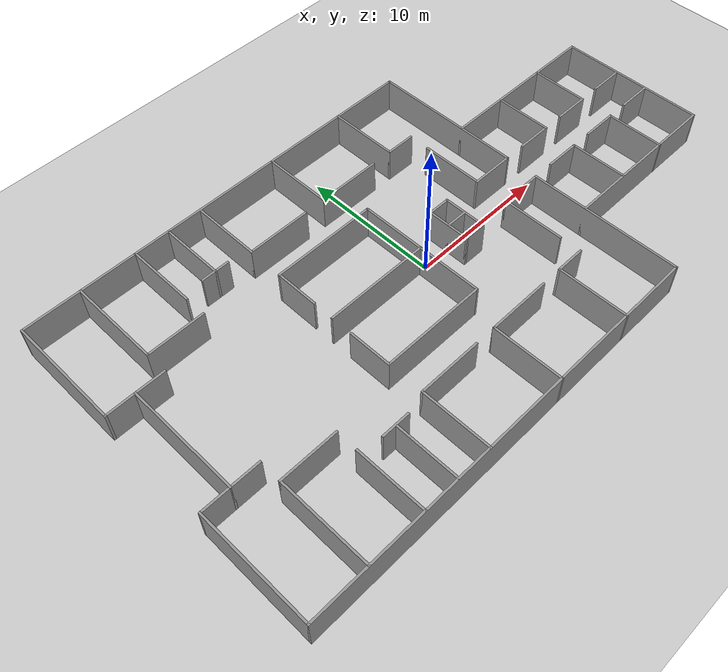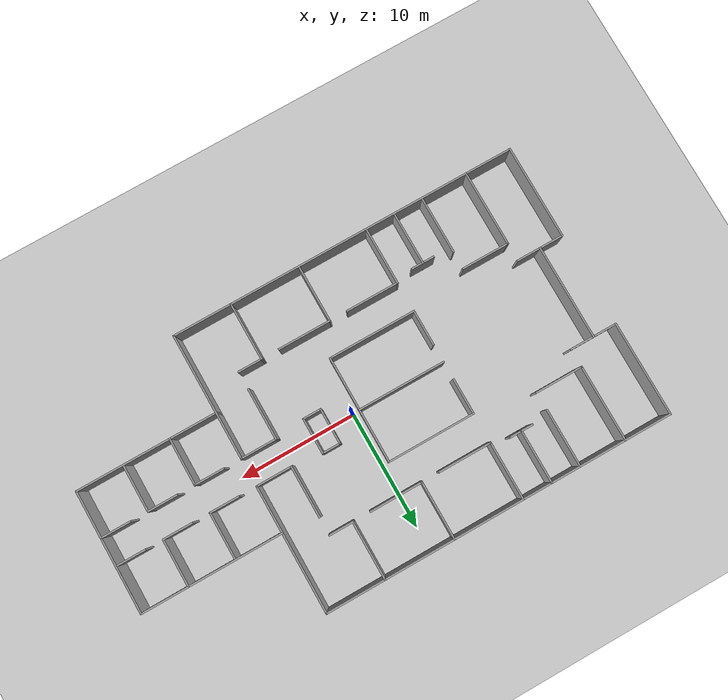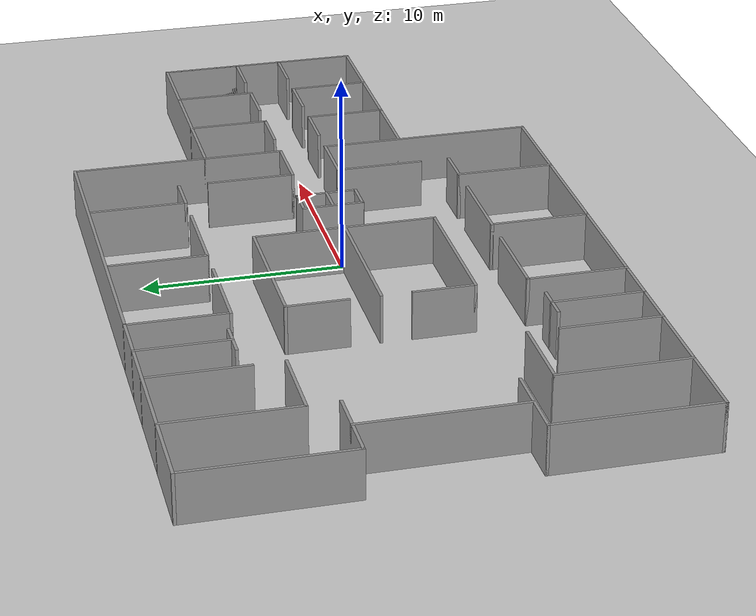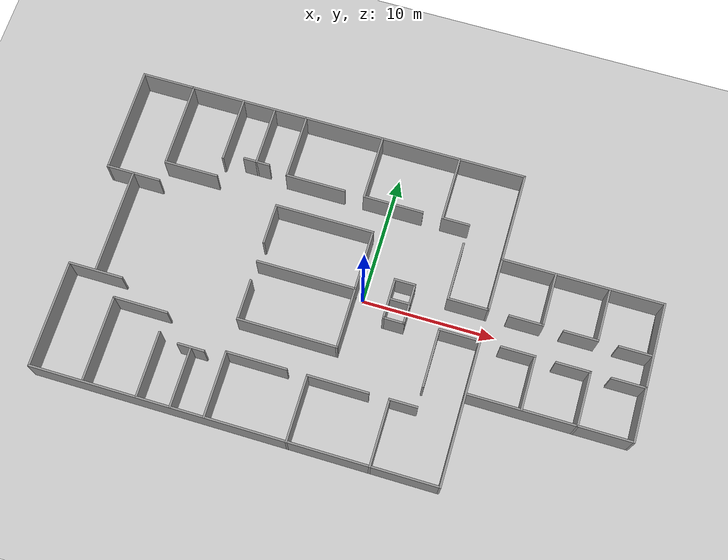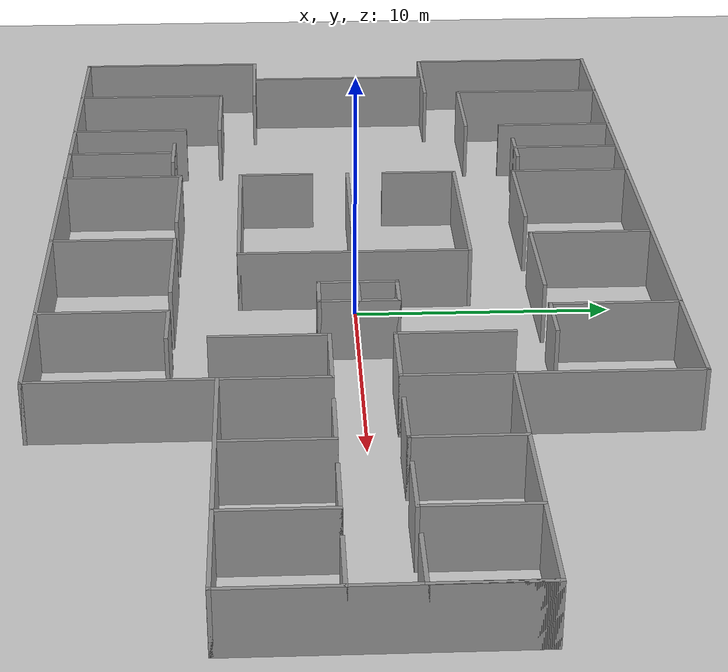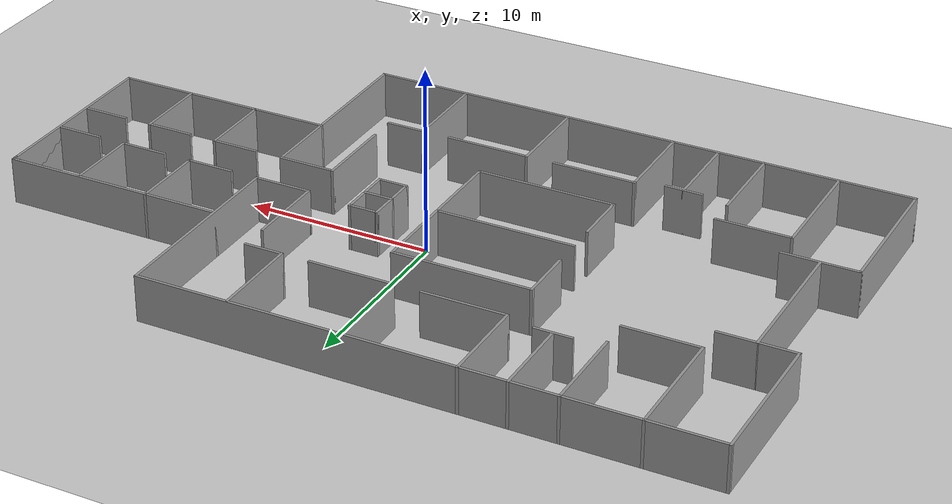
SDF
<sdf version="1.6">
 <world name="default">
  <model name="ground_plane">
   <static>1</static>
   <link name="link">
    <collision name="collision">
     <geometry><plane><normal>0 0 1</normal><size>100 100</size></plane></geometry>
     <surface>
      <contact><collide_bitmask>65535</collide_bitmask></contact>
      <friction><ode><mu>100</mu><mu2>50</mu2></ode></friction>
     </surface>
    </collision>
    <visual name="visual">
     <cast_shadows>0</cast_shadows>
     <geometry><plane><normal>0 0 1</normal><size>100 100</size></plane></geometry>
     <material>
      <script><uri>file://media/materials/scripts/gazebo.material</uri><name>Gazebo/Grey</name></script>
     </material>
    </visual>
   </link>
  </model>
  <model name="hospital_04">
   <pose>0 0 0 0 0 -1.57</pose>
   <link name="Wall_1">
    <collision name="Wall_1_Collision">
     <geometry><box><size>8.15 0.15 2.5</size></box></geometry>
     <pose>0 0 1.25 0 -0 0</pose>
    </collision>
    <visual name="Wall_1_Visual">
     <pose>0 0 1.25 0 -0 0</pose>
     <geometry><box><size>8.15 0.15 2.5</size></box></geometry>
     <material>
      <script><uri>file://media/materials/scripts/gazebo.material</uri><name>Gazebo/Grey</name></script>
      <ambient>1 1 1 1</ambient>
     </material>
     <meta><layer>0</layer></meta>
    </visual>
    <pose>0 -19 0 0 -0 0</pose>
   </link>
   <link name="Wall_100">
    <collision name="Wall_100_Collision">
     <geometry><box><size>3.15 0.15 2.5</size></box></geometry>
     <pose>0 0 1.25 0 -0 0</pose>
    </collision>
    <visual name="Wall_100_Visual">
     <pose>0 0 1.25 0 -0 0</pose>
     <geometry><box><size>3.15 0.15 2.5</size></box></geometry>
     <material>
      <script><uri>file://media/materials/scripts/gazebo.material</uri><name>Gazebo/Grey</name></script>
      <ambient>1 1 1 1</ambient>
     </material>
     <meta><layer>0</layer></meta>
    </visual>
    <pose>-3.05 -8 0 0 -0 3.14159</pose>
   </link>
   <link name="Wall_102">
    <collision name="Wall_102_Collision">
     <geometry><box><size>7.55 0.15 2.5</size></box></geometry>
     <pose>0 0 1.25 0 -0 0</pose>
    </collision>
    <visual name="Wall_102_Visual">
     <pose>0 0 1.25 0 -0 0</pose>
     <geometry><box><size>7.55 0.15 2.5</size></box></geometry>
     <material>
      <script><uri>file://media/materials/scripts/gazebo.material</uri><name>Gazebo/Grey</name></script>
      <ambient>1 1 1 1</ambient>
     </material>
     <meta><layer>0</layer></meta>
    </visual>
    <pose>0 -4.3 0 0 -0 -1.5708</pose>
   </link>
   <link name="Wall_104">
    <collision name="Wall_104_Collision">
     <geometry><box><size>3.15 0.15 2.5</size></box></geometry>
     <pose>0 0 1.25 0 -0 0</pose>
    </collision>
    <visual name="Wall_104_Visual">
     <pose>0 0 1.25 0 -0 0</pose>
     <geometry><box><size>3.15 0.15 2.5</size></box></geometry>
     <material>
      <script><uri>file://media/materials/scripts/gazebo.material</uri><name>Gazebo/Grey</name></script>
      <ambient>1 1 1 1</ambient>
     </material>
     <meta><layer>0</layer></meta>
    </visual>
    <pose>3.05 -8 0 0 -0 3.14159</pose>
   </link>
   <link name="Wall_106">
    <collision name="Wall_106_Collision">
     <geometry><box><size>3.15 0.15 2.5</size></box></geometry>
     <pose>0 0 1.25 0 -0 0</pose>
    </collision>
    <visual name="Wall_106_Visual">
     <pose>0 0 1.25 0 -0 0</pose>
     <geometry><box><size>3.15 0.15 2.5</size></box></geometry>
     <material>
      <script><uri>file://media/materials/scripts/gazebo.material</uri><name>Gazebo/Grey</name></script>
      <ambient>1 1 1 1</ambient>
     </material>
     <meta><layer>0</layer></meta>
    </visual>
    <pose>0 3.45 0 0 -0 0</pose>
   </link>
   <link name="Wall_108">
    <collision name="Wall_108_Collision">
     <geometry><box><size>1.65 0.15 2.5</size></box></geometry>
     <pose>0 0 1.25 0 -0 0</pose>
    </collision>
    <visual name="Wall_108_Visual">
     <pose>0 0 1.25 0 -0 0</pose>
     <geometry><box><size>1.65 0.15 2.5</size></box></geometry>
     <material>
      <script><uri>file://media/materials/scripts/gazebo.material</uri><name>Gazebo/Grey</name></script>
      <ambient>1 1 1 1</ambient>
     </material>
     <meta><layer>0</layer></meta>
    </visual>
    <pose>-1.5 2.7 0 0 -0 -1.5708</pose>
   </link>
   <link name="Wall_11">
    <collision name="Wall_11_Collision">
     <geometry><box><size>4.15 0.15 2.5</size></box></geometry>
     <pose>0 0 1.25 0 -0 0</pose>
    </collision>
    <visual name="Wall_11_Visual">
     <pose>0 0 1.25 0 -0 0</pose>
     <geometry><box><size>4.15 0.15 2.5</size></box></geometry>
     <material>
      <script><uri>file://media/materials/scripts/gazebo.material</uri><name>Gazebo/Grey</name></script>
      <ambient>1 1 1 1</ambient>
     </material>
     <meta><layer>0</layer></meta>
    </visual>
    <pose>-5.55 -15 0 0 -0 1.5708</pose>
   </link>
   <link name="Wall_110">
    <collision name="Wall_110_Collision">
     <geometry><box><size>1.65 0.15 2.5</size></box></geometry>
     <pose>0 0 1.25 0 -0 0</pose>
    </collision>
    <visual name="Wall_110_Visual">
     <pose>0 0 1.25 0 -0 0</pose>
     <geometry><box><size>1.65 0.15 2.5</size></box></geometry>
     <material>
      <script><uri>file://media/materials/scripts/gazebo.material</uri><name>Gazebo/Grey</name></script>
      <ambient>1 1 1 1</ambient>
     </material>
     <meta><layer>0</layer></meta>
    </visual>
    <pose>1.5 2.7 0 0 -0 -1.5708</pose>
   </link>
   <link name="Wall_112">
    <collision name="Wall_112_Collision">
     <geometry><box><size>3.15 0.15 2.5</size></box></geometry>
     <pose>0 0 1.25 0 -0 0</pose>
    </collision>
    <visual name="Wall_112_Visual">
     <pose>0 0 1.25 0 -0 0</pose>
     <geometry><box><size>3.15 0.15 2.5</size></box></geometry>
     <material>
      <script><uri>file://media/materials/scripts/gazebo.material</uri><name>Gazebo/Grey</name></script>
      <ambient>1 1 1 1</ambient>
     </material>
     <meta><layer>0</layer></meta>
    </visual>
    <pose>0 1.95 0 0 -0 0</pose>
   </link>
   <link name="Wall_114">
    <collision name="Wall_114_Collision">
     <geometry><box><size>1.65 0.15 2.5</size></box></geometry>
     <pose>0 0 1.25 0 -0 0</pose>
    </collision>
    <visual name="Wall_114_Visual">
     <pose>0 0 1.25 0 -0 0</pose>
     <geometry><box><size>1.65 0.15 2.5</size></box></geometry>
     <material>
      <script><uri>file://media/materials/scripts/gazebo.material</uri><name>Gazebo/Grey</name></script>
      <ambient>1 1 1 1</ambient>
     </material>
     <meta><layer>0</layer></meta>
    </visual>
    <pose>0 2.7 0 0 -0 -1.5708</pose>
   </link>
   <link name="Wall_122">
    <collision name="Wall_122_Collision">
     <geometry><box><size>4.15 0.15 2.5</size></box></geometry>
     <pose>0 0 1.25 0 -0 0</pose>
    </collision>
    <visual name="Wall_122_Visual">
     <pose>0 0 1.25 0 -0 0</pose>
     <geometry><box><size>4.15 0.15 2.5</size></box></geometry>
     <material>
      <script><uri>file://media/materials/scripts/gazebo.material</uri><name>Gazebo/Grey</name></script>
      <ambient>1 1 1 1</ambient>
     </material>
     <meta><layer>0</layer></meta>
    </visual>
    <pose>-3.2 13 0 0 -0 0</pose>
   </link>
   <link name="Wall_124">
    <collision name="Wall_124_Collision">
     <geometry><box><size>2.6 0.15 2.5</size></box></geometry>
     <pose>0 0 1.25 0 -0 0</pose>
    </collision>
    <visual name="Wall_124_Visual">
     <pose>0 0 1.25 0 -0 0</pose>
     <geometry><box><size>2.6 0.15 2.5</size></box></geometry>
     <material>
      <script><uri>file://media/materials/scripts/gazebo.material</uri><name>Gazebo/Grey</name></script>
      <ambient>1 1 1 1</ambient>
     </material>
     <meta><layer>0</layer></meta>
    </visual>
    <pose>-1.2 11.775 0 0 -0 -1.5708</pose>
   </link>
   <link name="Wall_126">
    <collision name="Wall_126_Collision">
     <geometry><box><size>4.15 0.15 2.5</size></box></geometry>
     <pose>0 0 1.25 0 -0 0</pose>
    </collision>
    <visual name="Wall_126_Visual">
     <pose>0 0 1.25 0 -0 0</pose>
     <geometry><box><size>4.15 0.15 2.5</size></box></geometry>
     <material>
      <script><uri>file://media/materials/scripts/gazebo.material</uri><name>Gazebo/Grey</name></script>
      <ambient>1 1 1 1</ambient>
     </material>
     <meta><layer>0</layer></meta>
    </visual>
    <pose>-3.2 17 0 0 -0 3.14159</pose>
   </link>
   <link name="Wall_128">
    <collision name="Wall_128_Collision">
     <geometry><box><size>2.6 0.15 2.5</size></box></geometry>
     <pose>0 0 1.25 0 -0 0</pose>
    </collision>
    <visual name="Wall_128_Visual">
     <pose>0 0 1.25 0 -0 0</pose>
     <geometry><box><size>2.6 0.15 2.5</size></box></geometry>
     <material>
      <script><uri>file://media/materials/scripts/gazebo.material</uri><name>Gazebo/Grey</name></script>
      <ambient>1 1 1 1</ambient>
     </material>
     <meta><layer>0</layer></meta>
    </visual>
    <pose>-1.2 15.775 0 0 -0 -1.5708</pose>
   </link>
   <link name="Wall_13">
    <collision name="Wall_13_Collision">
     <geometry><box><size>5.05 0.15 2.5</size></box></geometry>
     <pose>0 0 1.25 0 -0 0</pose>
    </collision>
    <visual name="Wall_13_Visual">
     <pose>0 0 1.25 0 -0 0</pose>
     <geometry><box><size>5.05 0.15 2.5</size></box></geometry>
     <material>
      <script><uri>file://media/materials/scripts/gazebo.material</uri><name>Gazebo/Grey</name></script>
      <ambient>1 1 1 1</ambient>
     </material>
     <meta><layer>0</layer></meta>
    </visual>
    <pose>-9.55 -13 0 0 -0 3.14159</pose>
   </link>
   <link name="Wall_130">
    <collision name="Wall_130_Collision">
     <geometry><box><size>2.6 0.15 2.5</size></box></geometry>
     <pose>0 0 1.25 0 -0 0</pose>
    </collision>
    <visual name="Wall_130_Visual">
     <pose>0 0 1.25 0 -0 0</pose>
     <geometry><box><size>2.6 0.15 2.5</size></box></geometry>
     <material>
      <script><uri>file://media/materials/scripts/gazebo.material</uri><name>Gazebo/Grey</name></script>
      <ambient>1 1 1 1</ambient>
     </material>
     <meta><layer>0</layer></meta>
    </visual>
    <pose>-1.2 19.775 0 0 -0 -1.5708</pose>
   </link>
   <link name="Wall_132">
    <collision name="Wall_132_Collision">
     <geometry><box><size>4.15 0.15 2.5</size></box></geometry>
     <pose>0 0 1.25 0 -0 0</pose>
    </collision>
    <visual name="Wall_132_Visual">
     <pose>0 0 1.25 0 -0 0</pose>
     <geometry><box><size>4.15 0.15 2.5</size></box></geometry>
     <material>
      <script><uri>file://media/materials/scripts/gazebo.material</uri><name>Gazebo/Grey</name></script>
      <ambient>1 1 1 1</ambient>
     </material>
     <meta><layer>0</layer></meta>
    </visual>
    <pose>-3.2 21 0 0 -0 0</pose>
   </link>
   <link name="Wall_134">
    <collision name="Wall_134_Collision">
     <geometry><box><size>12.15 0.15 2.5</size></box></geometry>
     <pose>0 0 1.25 0 -0 0</pose>
    </collision>
    <visual name="Wall_134_Visual">
     <pose>0 0 1.25 0 -0 0</pose>
     <geometry><box><size>12.15 0.15 2.5</size></box></geometry>
     <material>
      <script><uri>file://media/materials/scripts/gazebo.material</uri><name>Gazebo/Grey</name></script>
      <ambient>1 1 1 1</ambient>
     </material>
     <meta><layer>0</layer></meta>
    </visual>
    <pose>-5.2 15 0 0 -0 1.5708</pose>
   </link>
   <link name="Wall_136">
    <collision name="Wall_136_Collision">
     <geometry><box><size>4.15 0.15 2.5</size></box></geometry>
     <pose>0 0 1.25 0 -0 0</pose>
    </collision>
    <visual name="Wall_136_Visual">
     <pose>0 0 1.25 0 -0 0</pose>
     <geometry><box><size>4.15 0.15 2.5</size></box></geometry>
     <material>
      <script><uri>file://media/materials/scripts/gazebo.material</uri><name>Gazebo/Grey</name></script>
      <ambient>1 1 1 1</ambient>
     </material>
     <meta><layer>0</layer></meta>
    </visual>
    <pose>3.2 13 0 0 -0 0</pose>
   </link>
   <link name="Wall_138">
    <collision name="Wall_138_Collision">
     <geometry><box><size>4.15 0.15 2.5</size></box></geometry>
     <pose>0 0 1.25 0 -0 0</pose>
    </collision>
    <visual name="Wall_138_Visual">
     <pose>0 0 1.25 0 -0 0</pose>
     <geometry><box><size>4.15 0.15 2.5</size></box></geometry>
     <material>
      <script><uri>file://media/materials/scripts/gazebo.material</uri><name>Gazebo/Grey</name></script>
      <ambient>1 1 1 1</ambient>
     </material>
     <meta><layer>0</layer></meta>
    </visual>
    <pose>3.2 17 0 0 -0 0</pose>
   </link>
   <link name="Wall_140">
    <collision name="Wall_140_Collision">
     <geometry><box><size>10.55 0.15 2.5</size></box></geometry>
     <pose>0 0 1.25 0 -0 0</pose>
    </collision>
    <visual name="Wall_140_Visual">
     <pose>0 0 1.25 0 -0 0</pose>
     <geometry><box><size>10.55 0.15 2.5</size></box></geometry>
     <material>
      <script><uri>file://media/materials/scripts/gazebo.material</uri><name>Gazebo/Grey</name></script>
      <ambient>1 1 1 1</ambient>
     </material>
     <meta><layer>0</layer></meta>
    </visual>
    <pose>0 21 0 0 -0 0</pose>
   </link>
   <link name="Wall_142">
    <collision name="Wall_142_Collision">
     <geometry><box><size>12.15 0.15 2.5</size></box></geometry>
     <pose>0 0 1.25 0 -0 0</pose>
    </collision>
    <visual name="Wall_142_Visual">
     <pose>0 0 1.25 0 -0 0</pose>
     <geometry><box><size>12.15 0.15 2.5</size></box></geometry>
     <material>
      <script><uri>file://media/materials/scripts/gazebo.material</uri><name>Gazebo/Grey</name></script>
      <ambient>1 1 1 1</ambient>
     </material>
     <meta><layer>0</layer></meta>
    </visual>
    <pose>5.2 15 0 0 -0 1.5708</pose>
   </link>
   <link name="Wall_144">
    <collision name="Wall_144_Collision">
     <geometry><box><size>2.6 0.15 2.5</size></box></geometry>
     <pose>0 0 1.25 0 -0 0</pose>
    </collision>
    <visual name="Wall_144_Visual">
     <pose>0 0 1.25 0 -0 0</pose>
     <geometry><box><size>2.6 0.15 2.5</size></box></geometry>
     <material>
      <script><uri>file://media/materials/scripts/gazebo.material</uri><name>Gazebo/Grey</name></script>
      <ambient>1 1 1 1</ambient>
     </material>
     <meta><layer>0</layer></meta>
    </visual>
    <pose>1.2 19.775 0 0 -0 -1.5708</pose>
   </link>
   <link name="Wall_146">
    <collision name="Wall_146_Collision">
     <geometry><box><size>2.6 0.15 2.5</size></box></geometry>
     <pose>0 0 1.25 0 -0 0</pose>
    </collision>
    <visual name="Wall_146_Visual">
     <pose>0 0 1.25 0 -0 0</pose>
     <geometry><box><size>2.6 0.15 2.5</size></box></geometry>
     <material>
      <script><uri>file://media/materials/scripts/gazebo.material</uri><name>Gazebo/Grey</name></script>
      <ambient>1 1 1 1</ambient>
     </material>
     <meta><layer>0</layer></meta>
    </visual>
    <pose>1.2 15.775 0 0 -0 -1.5708</pose>
   </link>
   <link name="Wall_148">
    <collision name="Wall_148_Collision">
     <geometry><box><size>2.6 0.15 2.5</size></box></geometry>
     <pose>0 0 1.25 0 -0 0</pose>
    </collision>
    <visual name="Wall_148_Visual">
     <pose>0 0 1.25 0 -0 0</pose>
     <geometry><box><size>2.6 0.15 2.5</size></box></geometry>
     <material>
      <script><uri>file://media/materials/scripts/gazebo.material</uri><name>Gazebo/Grey</name></script>
      <ambient>1 1 1 1</ambient>
     </material>
     <meta><layer>0</layer></meta>
    </visual>
    <pose>1.2 11.775 0 0 -0 -1.5708</pose>
   </link>
   <link name="Wall_17">
    <collision name="Wall_17_Collision">
     <geometry><box><size>2.05 0.15 2.5</size></box></geometry>
     <pose>0 0 1.25 0 -0 0</pose>
    </collision>
    <visual name="Wall_17_Visual">
     <pose>0 0 1.25 0 -0 0</pose>
     <geometry><box><size>2.05 0.15 2.5</size></box></geometry>
     <material>
      <script><uri>file://media/materials/scripts/gazebo.material</uri><name>Gazebo/Grey</name></script>
      <ambient>1 1 1 1</ambient>
     </material>
     <meta><layer>0</layer></meta>
    </visual>
    <pose>-7.5 -10.5 0 0 -0 1.5708</pose>
   </link>
   <link name="Wall_21">
    <collision name="Wall_21_Collision">
     <geometry><box><size>4.65 0.15 2.5</size></box></geometry>
     <pose>0 0 1.25 0 -0 0</pose>
    </collision>
    <visual name="Wall_21_Visual">
     <pose>0 0 1.25 0 -0 0</pose>
     <geometry><box><size>4.65 0.15 2.5</size></box></geometry>
     <material>
      <script><uri>file://media/materials/scripts/gazebo.material</uri><name>Gazebo/Grey</name></script>
      <ambient>1 1 1 1</ambient>
     </material>
     <meta><layer>0</layer></meta>
    </visual>
    <pose>-9.75 -10.5 0 0 -0 0</pose>
   </link>
   <link name="Wall_23">
    <collision name="Wall_23_Collision">
     <geometry><box><size>5.05 0.15 2.5</size></box></geometry>
     <pose>0 0 1.25 0 -0 0</pose>
    </collision>
    <visual name="Wall_23_Visual">
     <pose>0 0 1.25 0 -0 0</pose>
     <geometry><box><size>5.05 0.15 2.5</size></box></geometry>
     <material>
      <script><uri>file://media/materials/scripts/gazebo.material</uri><name>Gazebo/Grey</name></script>
      <ambient>1 1 1 1</ambient>
     </material>
     <meta><layer>0</layer></meta>
    </visual>
    <pose>-9.55 -8 0 0 -0 0</pose>
   </link>
   <link name="Wall_27">
    <collision name="Wall_27_Collision">
     <geometry><box><size>4.6 0.15 2.5</size></box></geometry>
     <pose>0 0 1.25 0 -0 0</pose>
    </collision>
    <visual name="Wall_27_Visual">
     <pose>0 0 1.25 0 -0 0</pose>
     <geometry><box><size>4.6 0.15 2.5</size></box></geometry>
     <material>
      <script><uri>file://media/materials/scripts/gazebo.material</uri><name>Gazebo/Grey</name></script>
      <ambient>1 1 1 1</ambient>
     </material>
     <meta><layer>0</layer></meta>
    </visual>
    <pose>-7.1 -5.775 0 0 -0 1.5708</pose>
   </link>
   <link name="Wall_29">
    <collision name="Wall_29_Collision">
     <geometry><box><size>5.05 0.15 2.5</size></box></geometry>
     <pose>0 0 1.25 0 -0 0</pose>
    </collision>
    <visual name="Wall_29_Visual">
     <pose>0 0 1.25 0 -0 0</pose>
     <geometry><box><size>5.05 0.15 2.5</size></box></geometry>
     <material>
      <script><uri>file://media/materials/scripts/gazebo.material</uri><name>Gazebo/Grey</name></script>
      <ambient>1 1 1 1</ambient>
     </material>
     <meta><layer>0</layer></meta>
    </visual>
    <pose>-9.55 -2 0 0 -0 0</pose>
   </link>
   <link name="Wall_3">
    <collision name="Wall_3_Collision">
     <geometry><box><size>4.15 0.15 2.5</size></box></geometry>
     <pose>0 0 1.25 0 -0 0</pose>
    </collision>
    <visual name="Wall_3_Visual">
     <pose>0 0 1.25 0 -0 0</pose>
     <geometry><box><size>4.15 0.15 2.5</size></box></geometry>
     <material>
      <script><uri>file://media/materials/scripts/gazebo.material</uri><name>Gazebo/Grey</name></script>
      <ambient>1 1 1 1</ambient>
     </material>
     <meta><layer>0</layer></meta>
    </visual>
    <pose>-4 -19 0 0 -0 -1.5708</pose>
   </link>
   <link name="Wall_31">
    <collision name="Wall_31_Collision">
     <geometry><box><size>4.6 0.15 2.5</size></box></geometry>
     <pose>0 0 1.25 0 -0 0</pose>
    </collision>
    <visual name="Wall_31_Visual">
     <pose>0 0 1.25 0 -0 0</pose>
     <geometry><box><size>4.6 0.15 2.5</size></box></geometry>
     <material>
      <script><uri>file://media/materials/scripts/gazebo.material</uri><name>Gazebo/Grey</name></script>
      <ambient>1 1 1 1</ambient>
     </material>
     <meta><layer>0</layer></meta>
    </visual>
    <pose>-7.1 0.225001 0 0 -0 1.5708</pose>
   </link>
   <link name="Wall_33">
    <collision name="Wall_33_Collision">
     <geometry><box><size>5.05 0.15 2.5</size></box></geometry>
     <pose>0 0 1.25 0 -0 0</pose>
    </collision>
    <visual name="Wall_33_Visual">
     <pose>0 0 1.25 0 -0 0</pose>
     <geometry><box><size>5.05 0.15 2.5</size></box></geometry>
     <material>
      <script><uri>file://media/materials/scripts/gazebo.material</uri><name>Gazebo/Grey</name></script>
      <ambient>1 1 1 1</ambient>
     </material>
     <meta><layer>0</layer></meta>
    </visual>
    <pose>-9.55 4 0 0 -0 0</pose>
   </link>
   <link name="Wall_37">
    <collision name="Wall_37_Collision">
     <geometry><box><size>2.15 0.15 2.5</size></box></geometry>
     <pose>0 0 1.25 0 -0 0</pose>
    </collision>
    <visual name="Wall_37_Visual">
     <pose>0 0 1.25 0 -0 0</pose>
     <geometry><box><size>2.15 0.15 2.5</size></box></geometry>
     <material>
      <script><uri>file://media/materials/scripts/gazebo.material</uri><name>Gazebo/Grey</name></script>
      <ambient>1 1 1 1</ambient>
     </material>
     <meta><layer>0</layer></meta>
    </visual>
    <pose>-7.1 5 0 0 -0 1.5708</pose>
   </link>
   <link name="Wall_43">
    <collision name="Wall_43_Collision">
     <geometry><box><size>30.15 0.15 2.5</size></box></geometry>
     <pose>0 0 1.25 0 -0 0</pose>
    </collision>
    <visual name="Wall_43_Visual">
     <pose>0 0 1.25 0 -0 0</pose>
     <geometry><box><size>30.15 0.15 2.5</size></box></geometry>
     <material>
      <script><uri>file://media/materials/scripts/gazebo.material</uri><name>Gazebo/Grey</name></script>
      <ambient>1 1 1 1</ambient>
     </material>
     <meta><layer>0</layer></meta>
    </visual>
    <pose>-12 -6 0 0 -0 1.5708</pose>
   </link>
   <link name="Wall_49">
    <collision name="Wall_49_Collision">
     <geometry><box><size>4.5 0.15 2.5</size></box></geometry>
     <pose>0 0 1.25 0 -0 0</pose>
    </collision>
    <visual name="Wall_49_Visual">
     <pose>0 0 1.25 0 -0 0</pose>
     <geometry><box><size>4.5 0.15 2.5</size></box></geometry>
     <material>
      <script><uri>file://media/materials/scripts/gazebo.material</uri><name>Gazebo/Grey</name></script>
      <ambient>1 1 1 1</ambient>
     </material>
     <meta><layer>0</layer></meta>
    </visual>
    <pose>-3.375 6 0 0 -0 0</pose>
   </link>
   <link name="Wall_5">
    <collision name="Wall_5_Collision">
     <geometry><box><size>8.15 0.15 2.5</size></box></geometry>
     <pose>0 0 1.25 0 -0 0</pose>
    </collision>
    <visual name="Wall_5_Visual">
     <pose>0 0 1.25 0 -0 0</pose>
     <geometry><box><size>8.15 0.15 2.5</size></box></geometry>
     <material>
      <script><uri>file://media/materials/scripts/gazebo.material</uri><name>Gazebo/Grey</name></script>
      <ambient>1 1 1 1</ambient>
     </material>
     <meta><layer>0</layer></meta>
    </visual>
    <pose>-8 -21 0 0 -0 3.14159</pose>
   </link>
   <link name="Wall_51">
    <collision name="Wall_51_Collision">
     <geometry><box><size>4.5 0.15 2.5</size></box></geometry>
     <pose>0 0 1.25 0 -0 0</pose>
    </collision>
    <visual name="Wall_51_Visual">
     <pose>0 0 1.25 0 -0 0</pose>
     <geometry><box><size>4.5 0.15 2.5</size></box></geometry>
     <material>
      <script><uri>file://media/materials/scripts/gazebo.material</uri><name>Gazebo/Grey</name></script>
      <ambient>1 1 1 1</ambient>
     </material>
     <meta><layer>0</layer></meta>
    </visual>
    <pose>3.375 6 0 0 -0 0</pose>
   </link>
   <link name="Wall_58">
    <collision name="Wall_58_Collision">
     <geometry><box><size>3.15 0.15 2.5</size></box></geometry>
     <pose>0 0 1.25 0 -0 0</pose>
    </collision>
    <visual name="Wall_58_Visual">
     <pose>0 0 1.25 0 -0 0</pose>
     <geometry><box><size>3.15 0.15 2.5</size></box></geometry>
     <material>
      <script><uri>file://media/materials/scripts/gazebo.material</uri><name>Gazebo/Grey</name></script>
      <ambient>1 1 1 1</ambient>
     </material>
     <meta><layer>0</layer></meta>
    </visual>
    <pose>-1.2 7.5 0 0 -0 1.5708</pose>
   </link>
   <link name="Wall_60">
    <collision name="Wall_60_Collision">
     <geometry><box><size>10.95 0.15 2.5</size></box></geometry>
     <pose>0 0 1.25 0 -0 0</pose>
    </collision>
    <visual name="Wall_60_Visual">
     <pose>0 0 1.25 0 -0 0</pose>
     <geometry><box><size>10.95 0.15 2.5</size></box></geometry>
     <material>
      <script><uri>file://media/materials/scripts/gazebo.material</uri><name>Gazebo/Grey</name></script>
      <ambient>1 1 1 1</ambient>
     </material>
     <meta><layer>0</layer></meta>
    </visual>
    <pose>-6.6 9 0 0 -0 0</pose>
   </link>
   <link name="Wall_62">
    <collision name="Wall_62_Collision">
     <geometry><box><size>4.15 0.15 2.5</size></box></geometry>
     <pose>0 0 1.25 0 -0 0</pose>
    </collision>
    <visual name="Wall_62_Visual">
     <pose>0 0 1.25 0 -0 0</pose>
     <geometry><box><size>4.15 0.15 2.5</size></box></geometry>
     <material>
      <script><uri>file://media/materials/scripts/gazebo.material</uri><name>Gazebo/Grey</name></script>
      <ambient>1 1 1 1</ambient>
     </material>
     <meta><layer>0</layer></meta>
    </visual>
    <pose>4 -19 0 0 -0 -1.5708</pose>
   </link>
   <link name="Wall_64">
    <collision name="Wall_64_Collision">
     <geometry><box><size>8.15 0.15 2.5</size></box></geometry>
     <pose>0 0 1.25 0 -0 0</pose>
    </collision>
    <visual name="Wall_64_Visual">
     <pose>0 0 1.25 0 -0 0</pose>
     <geometry><box><size>8.15 0.15 2.5</size></box></geometry>
     <material>
      <script><uri>file://media/materials/scripts/gazebo.material</uri><name>Gazebo/Grey</name></script>
      <ambient>1 1 1 1</ambient>
     </material>
     <meta><layer>0</layer></meta>
    </visual>
    <pose>8 -21 0 0 -0 0</pose>
   </link>
   <link name="Wall_66">
    <collision name="Wall_66_Collision">
     <geometry><box><size>30.15 0.15 2.5</size></box></geometry>
     <pose>0 0 1.25 0 -0 0</pose>
    </collision>
    <visual name="Wall_66_Visual">
     <pose>0 0 1.25 0 -0 0</pose>
     <geometry><box><size>30.15 0.15 2.5</size></box></geometry>
     <material>
      <script><uri>file://media/materials/scripts/gazebo.material</uri><name>Gazebo/Grey</name></script>
      <ambient>1 1 1 1</ambient>
     </material>
     <meta><layer>0</layer></meta>
    </visual>
    <pose>12 -6 0 0 -0 1.5708</pose>
   </link>
   <link name="Wall_68">
    <collision name="Wall_68_Collision">
     <geometry><box><size>6.6 0.15 2.5</size></box></geometry>
     <pose>0 0 1.25 0 -0 0</pose>
    </collision>
    <visual name="Wall_68_Visual">
     <pose>0 0 1.25 0 -0 0</pose>
     <geometry><box><size>6.6 0.15 2.5</size></box></geometry>
     <material>
      <script><uri>file://media/materials/scripts/gazebo.material</uri><name>Gazebo/Grey</name></script>
      <ambient>1 1 1 1</ambient>
     </material>
     <meta><layer>0</layer></meta>
    </visual>
    <pose>8.775 -17 0 0 -0 0</pose>
   </link>
   <link name="Wall_7">
    <collision name="Wall_7_Collision">
     <geometry><box><size>6.6 0.15 2.5</size></box></geometry>
     <pose>0 0 1.25 0 -0 0</pose>
    </collision>
    <visual name="Wall_7_Visual">
     <pose>0 0 1.25 0 -0 0</pose>
     <geometry><box><size>6.6 0.15 2.5</size></box></geometry>
     <material>
      <script><uri>file://media/materials/scripts/gazebo.material</uri><name>Gazebo/Grey</name></script>
      <ambient>1 1 1 1</ambient>
     </material>
     <meta><layer>0</layer></meta>
    </visual>
    <pose>-8.775 -17 0 0 -0 3.14159</pose>
   </link>
   <link name="Wall_70">
    <collision name="Wall_70_Collision">
     <geometry><box><size>4.15 0.15 2.5</size></box></geometry>
     <pose>0 0 1.25 0 -0 0</pose>
    </collision>
    <visual name="Wall_70_Visual">
     <pose>0 0 1.25 0 -0 0</pose>
     <geometry><box><size>4.15 0.15 2.5</size></box></geometry>
     <material>
      <script><uri>file://media/materials/scripts/gazebo.material</uri><name>Gazebo/Grey</name></script>
      <ambient>1 1 1 1</ambient>
     </material>
     <meta><layer>0</layer></meta>
    </visual>
    <pose>5.55 -15 0 0 -0 1.5708</pose>
   </link>
   <link name="Wall_72">
    <collision name="Wall_72_Collision">
     <geometry><box><size>5.05 0.15 2.5</size></box></geometry>
     <pose>0 0 1.25 0 -0 0</pose>
    </collision>
    <visual name="Wall_72_Visual">
     <pose>0 0 1.25 0 -0 0</pose>
     <geometry><box><size>5.05 0.15 2.5</size></box></geometry>
     <material>
      <script><uri>file://media/materials/scripts/gazebo.material</uri><name>Gazebo/Grey</name></script>
      <ambient>1 1 1 1</ambient>
     </material>
     <meta><layer>0</layer></meta>
    </visual>
    <pose>9.55 -13 0 0 -0 0</pose>
   </link>
   <link name="Wall_74">
    <collision name="Wall_74_Collision">
     <geometry><box><size>2.05 0.15 2.5</size></box></geometry>
     <pose>0 0 1.25 0 -0 0</pose>
    </collision>
    <visual name="Wall_74_Visual">
     <pose>0 0 1.25 0 -0 0</pose>
     <geometry><box><size>2.05 0.15 2.5</size></box></geometry>
     <material>
      <script><uri>file://media/materials/scripts/gazebo.material</uri><name>Gazebo/Grey</name></script>
      <ambient>1 1 1 1</ambient>
     </material>
     <meta><layer>0</layer></meta>
    </visual>
    <pose>7.5 -10.5 0 0 -0 1.5708</pose>
   </link>
   <link name="Wall_76">
    <collision name="Wall_76_Collision">
     <geometry><box><size>4.65 0.15 2.5</size></box></geometry>
     <pose>0 0 1.25 0 -0 0</pose>
    </collision>
    <visual name="Wall_76_Visual">
     <pose>0 0 1.25 0 -0 0</pose>
     <geometry><box><size>4.65 0.15 2.5</size></box></geometry>
     <material>
      <script><uri>file://media/materials/scripts/gazebo.material</uri><name>Gazebo/Grey</name></script>
      <ambient>1 1 1 1</ambient>
     </material>
     <meta><layer>0</layer></meta>
    </visual>
    <pose>9.75 -10.5 0 0 -0 0</pose>
   </link>
   <link name="Wall_78">
    <collision name="Wall_78_Collision">
     <geometry><box><size>5.05 0.15 2.5</size></box></geometry>
     <pose>0 0 1.25 0 -0 0</pose>
    </collision>
    <visual name="Wall_78_Visual">
     <pose>0 0 1.25 0 -0 0</pose>
     <geometry><box><size>5.05 0.15 2.5</size></box></geometry>
     <material>
      <script><uri>file://media/materials/scripts/gazebo.material</uri><name>Gazebo/Grey</name></script>
      <ambient>1 1 1 1</ambient>
     </material>
     <meta><layer>0</layer></meta>
    </visual>
    <pose>9.55 -8 0 0 -0 0</pose>
   </link>
   <link name="Wall_80">
    <collision name="Wall_80_Collision">
     <geometry><box><size>4.6 0.15 2.5</size></box></geometry>
     <pose>0 0 1.25 0 -0 0</pose>
    </collision>
    <visual name="Wall_80_Visual">
     <pose>0 0 1.25 0 -0 0</pose>
     <geometry><box><size>4.6 0.15 2.5</size></box></geometry>
     <material>
      <script><uri>file://media/materials/scripts/gazebo.material</uri><name>Gazebo/Grey</name></script>
      <ambient>1 1 1 1</ambient>
     </material>
     <meta><layer>0</layer></meta>
    </visual>
    <pose>7.1 -5.775 0 0 -0 1.5708</pose>
   </link>
   <link name="Wall_82">
    <collision name="Wall_82_Collision">
     <geometry><box><size>5.05 0.15 2.5</size></box></geometry>
     <pose>0 0 1.25 0 -0 0</pose>
    </collision>
    <visual name="Wall_82_Visual">
     <pose>0 0 1.25 0 -0 0</pose>
     <geometry><box><size>5.05 0.15 2.5</size></box></geometry>
     <material>
      <script><uri>file://media/materials/scripts/gazebo.material</uri><name>Gazebo/Grey</name></script>
      <ambient>1 1 1 1</ambient>
     </material>
     <meta><layer>0</layer></meta>
    </visual>
    <pose>9.55 -2 0 0 -0 0</pose>
   </link>
   <link name="Wall_84">
    <collision name="Wall_84_Collision">
     <geometry><box><size>4.6 0.15 2.5</size></box></geometry>
     <pose>0 0 1.25 0 -0 0</pose>
    </collision>
    <visual name="Wall_84_Visual">
     <pose>0 0 1.25 0 -0 0</pose>
     <geometry><box><size>4.6 0.15 2.5</size></box></geometry>
     <material>
      <script><uri>file://media/materials/scripts/gazebo.material</uri><name>Gazebo/Grey</name></script>
      <ambient>1 1 1 1</ambient>
     </material>
     <meta><layer>0</layer></meta>
    </visual>
    <pose>7.1 0.225001 0 0 -0 1.5708</pose>
   </link>
   <link name="Wall_86">
    <collision name="Wall_86_Collision">
     <geometry><box><size>5.05 0.15 2.5</size></box></geometry>
     <pose>0 0 1.25 0 -0 0</pose>
    </collision>
    <visual name="Wall_86_Visual">
     <pose>0 0 1.25 0 -0 0</pose>
     <geometry><box><size>5.05 0.15 2.5</size></box></geometry>
     <material>
      <script><uri>file://media/materials/scripts/gazebo.material</uri><name>Gazebo/Grey</name></script>
      <ambient>1 1 1 1</ambient>
     </material>
     <meta><layer>0</layer></meta>
    </visual>
    <pose>9.55 4 0 0 -0 3.14159</pose>
   </link>
   <link name="Wall_88">
    <collision name="Wall_88_Collision">
     <geometry><box><size>2.15 0.15 2.5</size></box></geometry>
     <pose>0 0 1.25 0 -0 0</pose>
    </collision>
    <visual name="Wall_88_Visual">
     <pose>0 0 1.25 0 -0 0</pose>
     <geometry><box><size>2.15 0.15 2.5</size></box></geometry>
     <material>
      <script><uri>file://media/materials/scripts/gazebo.material</uri><name>Gazebo/Grey</name></script>
      <ambient>1 1 1 1</ambient>
     </material>
     <meta><layer>0</layer></meta>
    </visual>
    <pose>7.1 5 0 0 -0 1.5708</pose>
   </link>
   <link name="Wall_90">
    <collision name="Wall_90_Collision">
     <geometry><box><size>3.15 0.15 2.5</size></box></geometry>
     <pose>0 0 1.25 0 -0 0</pose>
    </collision>
    <visual name="Wall_90_Visual">
     <pose>0 0 1.25 0 -0 0</pose>
     <geometry><box><size>3.15 0.15 2.5</size></box></geometry>
     <material>
      <script><uri>file://media/materials/scripts/gazebo.material</uri><name>Gazebo/Grey</name></script>
      <ambient>1 1 1 1</ambient>
     </material>
     <meta><layer>0</layer></meta>
    </visual>
    <pose>1.2 7.5 0 0 -0 1.5708</pose>
   </link>
   <link name="Wall_92">
    <collision name="Wall_92_Collision">
     <geometry><box><size>10.95 0.15 2.5</size></box></geometry>
     <pose>0 0 1.25 0 -0 0</pose>
    </collision>
    <visual name="Wall_92_Visual">
     <pose>0 0 1.25 0 -0 0</pose>
     <geometry><box><size>10.95 0.15 2.5</size></box></geometry>
     <material>
      <script><uri>file://media/materials/scripts/gazebo.material</uri><name>Gazebo/Grey</name></script>
      <ambient>1 1 1 1</ambient>
     </material>
     <meta><layer>0</layer></meta>
    </visual>
    <pose>6.6 9 0 0 -0 0</pose>
   </link>
   <link name="Wall_94">
    <collision name="Wall_94_Collision">
     <geometry><box><size>7.55 0.15 2.5</size></box></geometry>
     <pose>0 0 1.25 0 -0 0</pose>
    </collision>
    <visual name="Wall_94_Visual">
     <pose>0 0 1.25 0 -0 0</pose>
     <geometry><box><size>7.55 0.15 2.5</size></box></geometry>
     <material>
      <script><uri>file://media/materials/scripts/gazebo.material</uri><name>Gazebo/Grey</name></script>
      <ambient>1 1 1 1</ambient>
     </material>
     <meta><layer>0</layer></meta>
    </visual>
    <pose>-4.55 -4.3 0 0 -0 1.5708</pose>
   </link>
   <link name="Wall_96">
    <collision name="Wall_96_Collision">
     <geometry><box><size>7.55 0.15 2.5</size></box></geometry>
     <pose>0 0 1.25 0 -0 0</pose>
    </collision>
    <visual name="Wall_96_Visual">
     <pose>0 0 1.25 0 -0 0</pose>
     <geometry><box><size>7.55 0.15 2.5</size></box></geometry>
     <material>
      <script><uri>file://media/materials/scripts/gazebo.material</uri><name>Gazebo/Grey</name></script>
      <ambient>1 1 1 1</ambient>
     </material>
     <meta><layer>0</layer></meta>
    </visual>
    <pose>4.55 -4.3 0 0 -0 1.5708</pose>
   </link>
   <link name="Wall_98">
    <collision name="Wall_98_Collision">
     <geometry><box><size>9.25 0.15 2.5</size></box></geometry>
     <pose>0 0 1.25 0 -0 0</pose>
    </collision>
    <visual name="Wall_98_Visual">
     <pose>0 0 1.25 0 -0 0</pose>
     <geometry><box><size>9.25 0.15 2.5</size></box></geometry>
     <material>
      <script><uri>file://media/materials/scripts/gazebo.material</uri><name>Gazebo/Grey</name></script>
      <ambient>1 1 1 1</ambient>
     </material>
     <meta><layer>0</layer></meta>
    </visual>
    <pose>0 -0.6 0 0 -0 0</pose>
   </link>
   <static>1</static>
  </model>
 </world>
</sdf>
